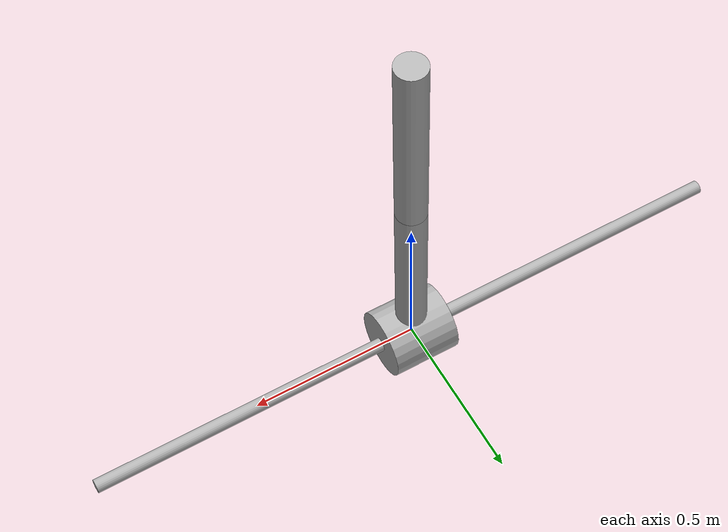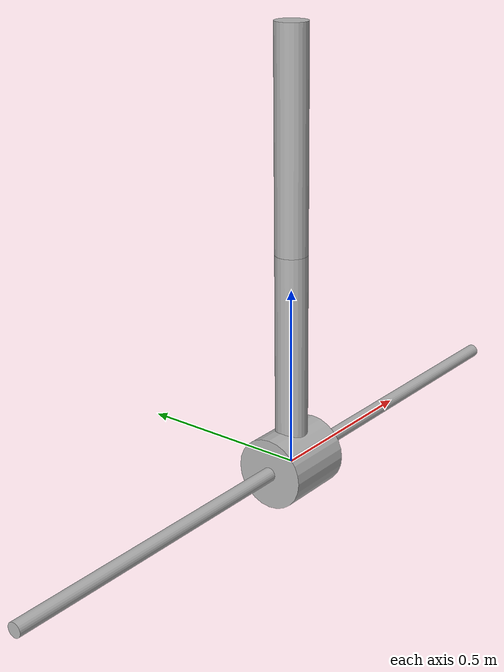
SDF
<?xml version="1.0"?>
<sdf version='1.11'>
  <model name='inverted_double_pendulum'>
    <link name='rail'>
      <inertial>
        <pose>0 0 0 0 0 0</pose>
        <mass>3.0000000000000001e-06</mass>
        <inertia>
          <ixx>3e-09</ixx>
          <ixy>0</ixy>
          <ixz>0</ixz>
          <iyy>3e-09</iyy>
          <iyz>0</iyz>
          <izz>3e-09</izz>
        </inertia>
      </inertial>
      <collision name='rail_fixed_joint_lump__rail_collision'>
        <pose>0 0 0 0 1.5707963267948966 0</pose>
        <geometry>
          <cylinder>
            <length>2</length>
            <radius>0.02</radius>
          </cylinder>
        </geometry>
      </collision>
      <visual name='rail_fixed_joint_lump__rail_visual'>
        <pose>0 0 0 0 1.5707963267948966 0</pose>
        <geometry>
          <cylinder>
            <length>2</length>
            <radius>0.02</radius>
          </cylinder>
        </geometry>
              <material>
          <ambient>0.5 0.5 0.5 1</ambient>
          <diffuse>0.7 0.7 0.7 1</diffuse>
          <specular>0.1 0.1 0.1 1</specular>
        </material>
      </visual>
    </link>
    <joint name='slider' type='prismatic'>
      <pose relative_to='rail'>0 0 0 0 0 0</pose>
      <parent>rail</parent>
      <child>cart</child>
      <axis>
        <xyz>1 0 0</xyz>
        <limit>
          <lower>-1</lower>
          <upper>1</upper>
          <effort>0</effort>
          <velocity>0</velocity>
        </limit>
        <dynamics>
          <damping>1</damping>
          <friction>0.0001</friction>
          <spring_reference>0</spring_reference>
          <spring_stiffness>0</spring_stiffness>
        </dynamics>
      </axis>
    </joint>
    <link name='cart'>
      <pose relative_to='slider'>0 0 0 0 0 0</pose>
      <inertial>
        <pose>0 0 0 0 0 0</pose>
        <mass>10.471981</mass>
        <inertia>
          <ixx>0.069810000999999997</ixx>
          <ixy>0</ixy>
          <ixz>0</ixz>
          <iyy>0.17453000099999999</iyy>
          <iyz>0</iyz>
          <izz>0.17453000099999999</izz>
        </inertia>
      </inertial>
      <collision name='cart_fixed_joint_lump__cart_collision'>
        <pose>0 0 0 0 1.5707963267948966 0</pose>
        <geometry>
          <cylinder>
            <length>0.20000000000000001</length>
            <radius>0.10000000000000001</radius>
          </cylinder>
        </geometry>
      </collision>
      <visual name='cart_fixed_joint_lump__cart_visual'>
        <pose>0 0 0 0 1.5707963267948966 0</pose>
        <geometry>
          <cylinder>
            <length>0.20000000000000001</length>
            <radius>0.10000000000000001</radius>
          </cylinder>
        </geometry>
              <material>
          <ambient>0.5 0.5 0.5 1</ambient>
          <diffuse>0.7 0.7 0.7 1</diffuse>
          <specular>0.1 0.1 0.1 1</specular>
        </material>
      </visual>
    </link>
    <joint name='hinge' type='revolute'>
      <pose relative_to='cart'>0 0 0 0 0 0</pose>
      <parent>cart</parent>
      <child>pole</child>
      <axis>
        <xyz>0 1 0</xyz>
        <limit>
          <lower>-inf</lower>
          <upper>inf</upper>
        </limit>
        <dynamics>
          <damping>1</damping>
          <friction>0.0001</friction>
          <spring_reference>0</spring_reference>
          <spring_stiffness>0</spring_stiffness>
        </dynamics>
      </axis>
    </joint>
    <link name='pole'>
      <pose relative_to='hinge'>0 0 0 0 0 0</pose>
      <inertial>
        <pose>0 0 0.29999992855001062 0 0 0</pose>
        <mass>4.1987410000000001</mass>
        <inertia>
          <ixx>0.1694200909999784</ixx>
          <ixy>0</ixy>
          <ixz>0</ixz>
          <iyy>0.1694200909999784</iyy>
          <iyz>0</iyz>
          <izz>0.005670001</izz>
        </inertia>
      </inertial>
      <collision name='pole_fixed_joint_lump__pole_collision'>
        <pose>0 0 0.29999999999999999 0 0 0</pose>
        <geometry>
          <cylinder>
            <length>0.59999999999999998</length>
            <radius>0.044999999999999998</radius>
          </cylinder>
        </geometry>
      </collision>
      <visual name='pole_fixed_joint_lump__pole_visual'>
        <pose>0 0 0.29999999999999999 0 0 0</pose>
        <geometry>
          <cylinder>
            <length>0.59999999999999998</length>
            <radius>0.044999999999999998</radius>
          </cylinder>
        </geometry>
              <material>
          <ambient>0.5 0.5 0.5 1</ambient>
          <diffuse>0.7 0.7 0.7 1</diffuse>
          <specular>0.1 0.1 0.1 1</specular>
        </material>
      </visual>
    </link>
    <joint name='hinge2' type='revolute'>
      <pose relative_to='pole'>0 0 0.59999999999999998 0 0 0</pose>
      <parent>pole</parent>
      <child>pole2</child>
      <axis>
        <xyz>0 1 0</xyz>
        <limit>
          <lower>-inf</lower>
          <upper>inf</upper>
        </limit>
        <dynamics>
          <damping>1</damping>
          <friction>0.0001</friction>
          <spring_reference>0</spring_reference>
          <spring_stiffness>0</spring_stiffness>
        </dynamics>
      </axis>
    </joint>
    <link name='pole2'>
      <pose relative_to='hinge2'>0 0 0 0 0 0</pose>
      <inertial>
        <pose>0 0 0.29999992855001062 0 0 0</pose>
        <mass>4.1987410000000001</mass>
        <inertia>
          <ixx>0.1694200909999784</ixx>
          <ixy>0</ixy>
          <ixz>0</ixz>
          <iyy>0.1694200909999784</iyy>
          <iyz>0</iyz>
          <izz>0.005670001</izz>
        </inertia>
      </inertial>
      <collision name='pole2_fixed_joint_lump__pole2_collision'>
        <pose>0 0 0.29999999999999999 0 0 0</pose>
        <geometry>
          <cylinder>
            <length>0.59999999999999998</length>
            <radius>0.044999999999999998</radius>
          </cylinder>
        </geometry>
      </collision>
      <visual name='pole2_fixed_joint_lump__pole2_visual'>
        <pose>0 0 0.29999999999999999 0 0 0</pose>
        <geometry>
          <cylinder>
            <length>0.59999999999999998</length>
            <radius>0.044999999999999998</radius>
          </cylinder>
        </geometry>
              <material>
          <ambient>0.5 0.5 0.5 1</ambient>
          <diffuse>0.7 0.7 0.7 1</diffuse>
          <specular>0.1 0.1 0.1 1</specular>
        </material>
      </visual>
    </link>

<!-- Apply scalar force on the slider; gear=500 in the MJCF, applied
         in the env's apply_action before publishing. -->
    <plugin
      filename="gz-sim-apply-joint-force-system"
      name="gz::sim::systems::ApplyJointForce">
      <joint_name>slider</joint_name>
    </plugin>

    <plugin
      filename="gz-sim-joint-state-publisher-system"
      name="gz::sim::systems::JointStatePublisher">
      <joint_name>slider</joint_name>
      <joint_name>hinge</joint_name>
      <joint_name>hinge2</joint_name>
    </plugin>
  </model>
</sdf>
